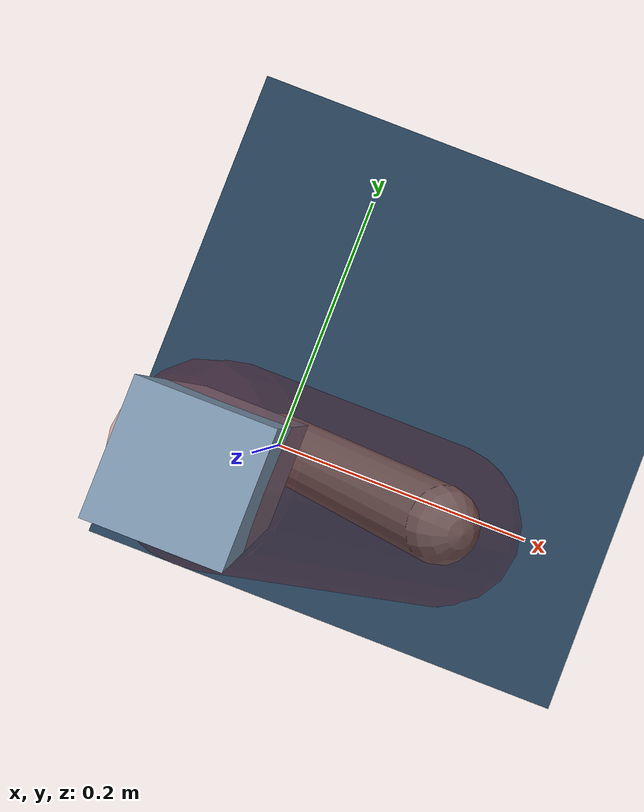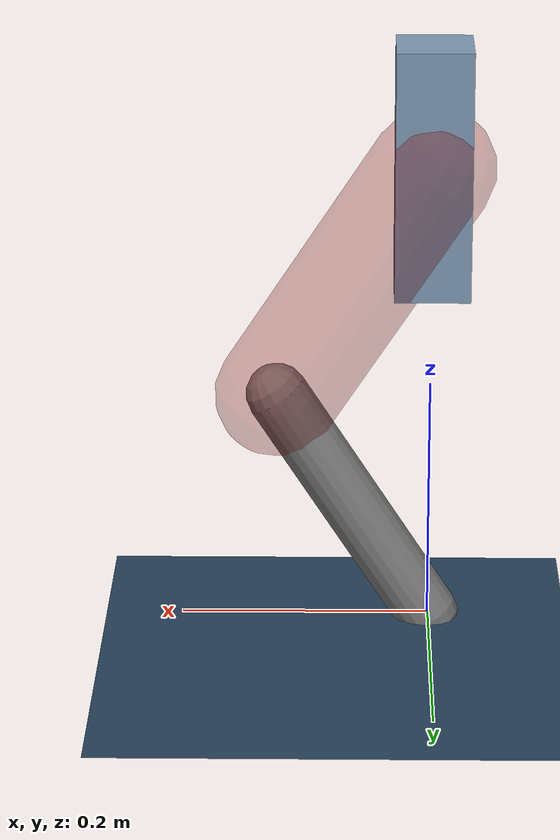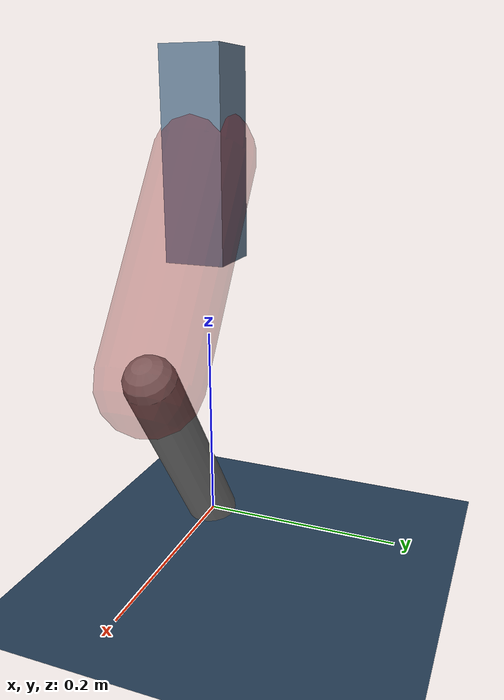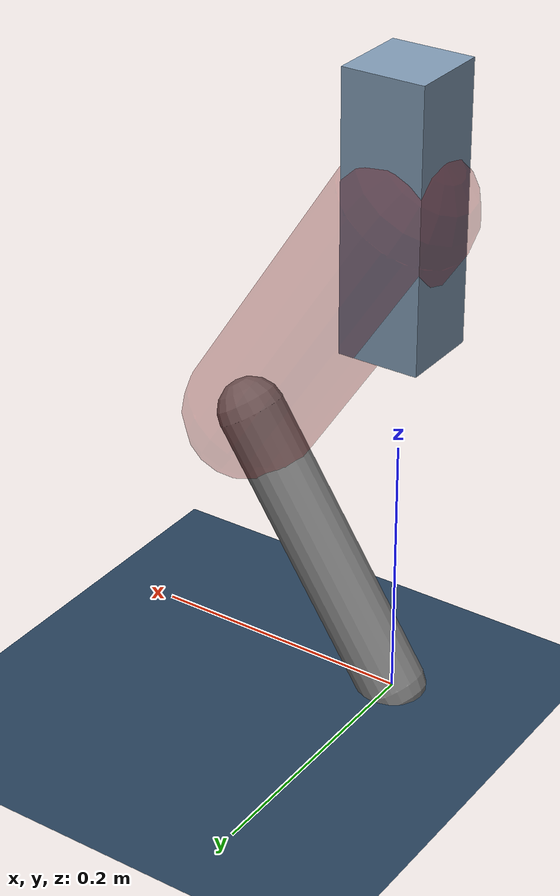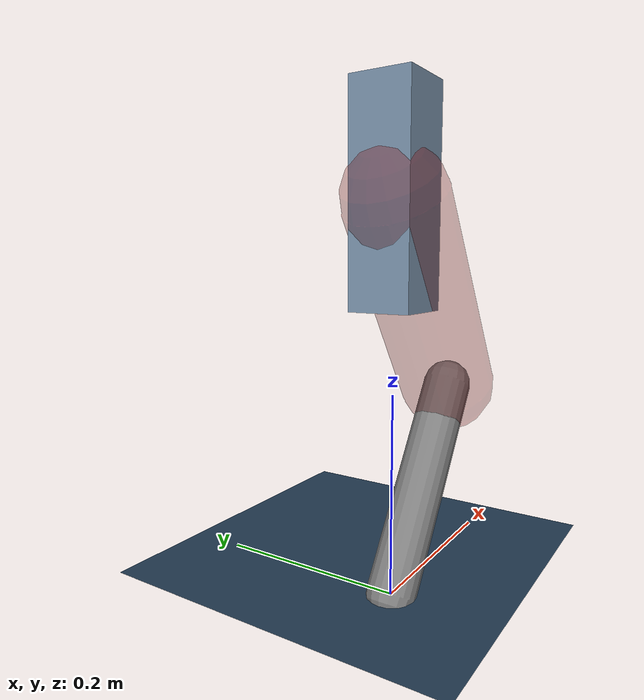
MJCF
<mujoco model="Hopper2D">
	<compiler inertiafromgeom="true" angle="radian" />
	<option timestep="0.001" integrator="implicit" cone="elliptic" solver="Newton" tolerance="1e-10" />

	<default>
		<geom contype="1" conaffinity="1" condim="3" friction="2 0.005 0.0001" solref="0.005 1" />
		<joint limited="true" damping="0.1" />
	</default>

	<asset>
		<texture name="skybox" type="skybox" builtin="gradient" rgb1=".4 .6 .8" rgb2="0 0 0" width="800" height="800" />
		<texture name="grid" type="2d" builtin="checker" rgb1=".1 .2 .3" rgb2=".2 .3 .4" width="300" height="300" mark="edge" markrgb=".2 .3 .4" />
		<material name="ground" texture="grid" texrepeat="1 1" texuniform="true" reflectance="0.1" />
		<material name="leg" rgba="0.5 0.6 0.7 1" />
	</asset>

	<worldbody>

		<geom name="floor" type="plane" size="5 5 0.25" material="ground" />

		<light directional="false" diffuse="0.8 0.8 0.8" specular="0.3 0.3 0.3" pos="0 0 2" dir="0 0 -1" />
		<light mode="targetbodycom" target="base" directional="false" diffuse="0.8 0.8 0.8" specular="0.3 0.3 0.3" pos="0 0 2" dir="0 0 -1" />

		<camera name="fixed" pos="0 -2 1" xyaxes="1 0 0 0 0 1" />
		<camera name="tracking" mode="trackcom" pos="0 -3 1" />

		<body name="root" pos="0 0 0.37787371806414893">
			<joint name="slide_x" type="slide" axis="1 0 0" range="-100 100" />
			<joint name="slide_z" type="slide" axis="0 0 1" range="0 10" />

			<body name="base" pos="0 0 0">
				<geom name="torso" type="box" size="0.03 0.03 0.1" mass="2.153" material="leg" />

				<body name="link1" pos="0 0 0" euler="0 0.9904222781221312 0">
					<joint type="hinge" axis="0 -1 0" pos="0 0 0" name="hinge1" limited="true" range="-3.14 3.14" stiffness="0" damping="0.1" />
					<geom name="thigh" type="capsule" fromto="0 0 0 0.22391177988443497 0 0" size="0.05" rgba="0.5 0 0 0.3" mass="0.7895794497110874" />

					<body name="link2" pos="0.22391177988443497 0 0" euler="0 1.152579302726515 0">
						<joint type="hinge" axis="0 -1 0" pos="0 0 0" name="hinge2" limited="true" range="-3.14 3.14" stiffness="0" damping="0.1" />
						<geom name="shank" type="capsule" fromto="0 0 0 0.22674410706242587 0 0" size="0.025" mass="0.4232952856499407" />

					</body>
				</body>
			</body>
		</body>
	</worldbody>

	<actuator>
		<motor name="torque1" joint="hinge1" ctrlrange="-15.216505118746236 15.216505118746236" ctrllimited="true" gear="1" />
		<motor name="torque2" joint="hinge2" ctrlrange="-45.622971270648804 45.622971270648804" ctrllimited="true" gear="1" />
	</actuator>
</mujoco>
